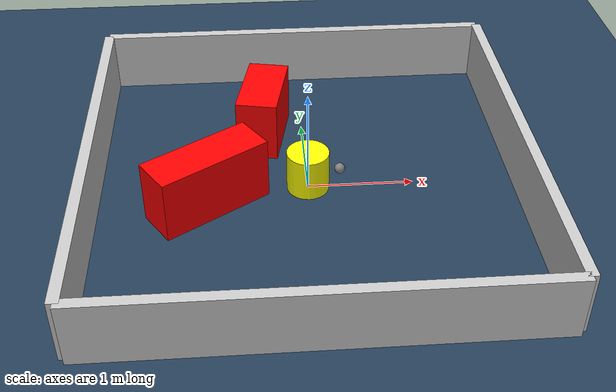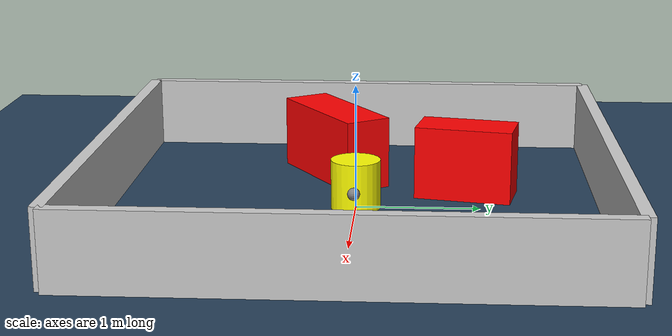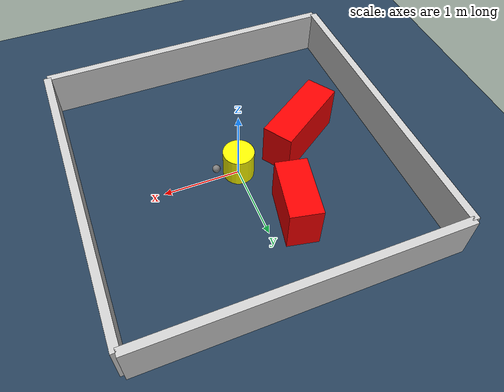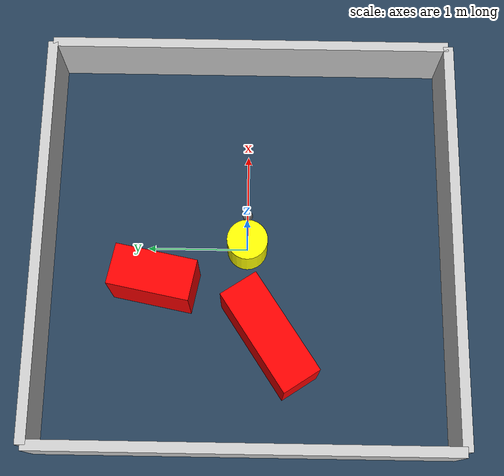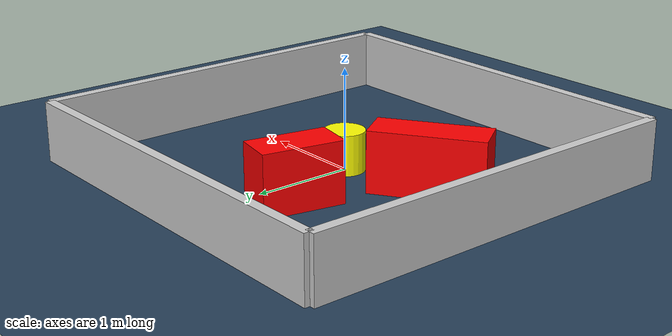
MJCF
<?xml version="1.0" ?>
<mujoco model="generated_environment">
  <option timestep="0.01" integrator="RK4" cone="elliptic"/>
  <default>
    <geom density="1"/>
  </default>
  <asset>
    <texture builtin="gradient" height="3072" rgb1="0.3 0.5 0.7" rgb2="0 0 0" type="skybox" width="512"/>
    <texture builtin="checker" height="300" mark="edge" markrgb="0.8 0.8 0.8" name="groundplane" rgb1="0.2 0.3 0.4" rgb2="0.1 0.2 0.3" type="2d" width="300"/>
    <material name="groundplane" reflectance="0.2" texrepeat="5 5" texture="groundplane" texuniform="true"/>
    <material name="robot" rgba="0.0 1.0 0.0 1"/>
  </asset>
  <worldbody>
    <light dir="0 0 -1" directional="true" pos="0 0 1.5"/>
    <geom condim="4" friction="1.0 0.005 0.001" material="groundplane" name="floor" size="0 0 0.05" type="plane"/>
    <body name="walls">
      <geom name="wall_1" condim="4" pos="-2.0 0.0 0.3" rgba="0.800000011920929 0.800000011920929 0.800000011920929 1.0" size="0.05 2.0 0.3" type="box"/>
      <geom name="wall_2" condim="4" pos="2.0 0.0 0.3" rgba="0.800000011920929 0.800000011920929 0.800000011920929 1.0" size="0.05 2.0 0.3" type="box"/>
      <geom name="wall_3" condim="4" pos="0.0 -2.0 0.3" rgba="0.800000011920929 0.800000011920929 0.800000011920929 1.0" size="2.0 0.05 0.3" type="box"/>
      <geom name="wall_4" condim="4" pos="0.0 2.0 0.3" rgba="0.800000011920929 0.800000011920929 0.800000011920929 1.0" size="2.0 0.05 0.3" type="box"/>
    </body>
    <body name="robot">
      <joint name="joint_x" type="slide" pos="0 0 0" axis="1 0 0"/>
      <joint name="joint_y" type="slide" pos="0 0 0" axis="0 1 0"/>
      <geom name="robot" type="sphere" pos="0.3 0.0 0.2" size="0.05" mass="5." friction="1.0 0.005 0.0001" condim="4" rgba="0.5 0.5 0.5 1.0"/>
      <site name="sensor_ball"/>
    </body>
    <body name="obstacle_movable_1">
      <geom name="obstacle_movable_1" condim="4" pos="0.0 0.0 0.2" euler="0 0 0.0" friction="1.0 0.005 0.001" rgba="1.0 1.0 0.0 1.0" size="0.2 0.2 0.0" type="cylinder" mass="0.1"/>
      <joint type="free"/>
    </body>
    <body name="obstacle_2_static">
      <geom name="obstacle_2_static" condim="4" pos="-0.38784544848581026 0.8945432088880969 0.3" euler="0 0 258.66396666805457" friction="1.0 0.005 0.001" rgba="1 0 0 1" size="0.3973409043331641 0.2 0.3" type="box"/>
    </body>
    <body name="obstacle_3_static">
      <geom name="obstacle_3_static" condim="4" pos="-0.9391992816721696 -0.22155118596329548 0.3" euler="0 0 213.43398630330827" friction="1.0 0.005 0.001" rgba="1 0 0 1" size="0.5480853800898396 0.2 0.3" type="box"/>
    </body>
  </worldbody>
  <actuator>
    <motor name="actuator_x" joint="joint_x" gear="1" ctrlrange="-1 1"/>
    <motor name="actuator_y" joint="joint_y" gear="1" ctrlrange="-1 1"/>
  </actuator>
</mujoco>
